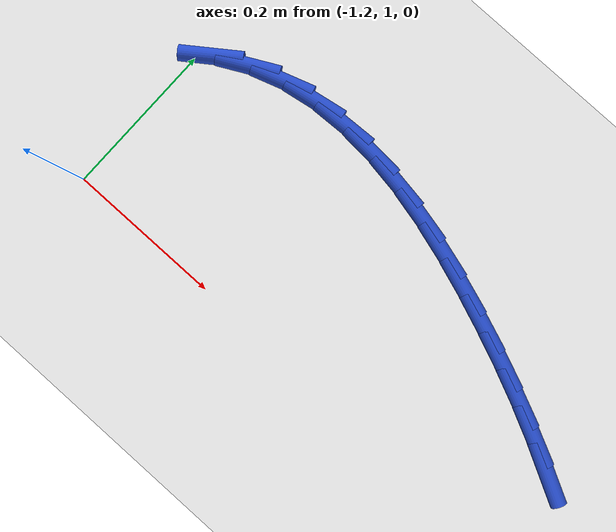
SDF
<sdf version="1.6">
 <world name="default">
  <model name="ground_plane">
   <static>1</static>
   <link name="link">
    <collision name="collision">
     <geometry><plane><normal>0 0 1</normal><size>100 100</size></plane></geometry>
     <surface><friction><ode><mu>100</mu><mu2>50</mu2></ode></friction></surface>
    </collision>
    <visual name="visual">
     <cast_shadows>0</cast_shadows>
     <geometry><plane><normal>0 0 1</normal><size>100 100</size></plane></geometry>
     <material>
      <script><uri>file://media/materials/scripts/gazebo.material</uri><name>Gazebo/WhiteGlow</name></script>
     </material>
    </visual>
   </link>
  </model>
  <model name="line">
   <link name="link_28">
    <pose>-0.5521324925458079 1.11052372530207 0.01 0 1.57 -0.4918160845121168</pose>
    <collision name="collision">
     <geometry><cylinder><radius>0.01</radius><length>0.08</length></cylinder></geometry>
    </collision>
    <visual name="visual">
     <material>
      <script><name>Gazebo/Blue</name><uri>file://media/materials/scripts/gazebo.material</uri></script>
     </material>
     <geometry><cylinder><radius>0.01</radius><length>0.08</length></cylinder></geometry>
    </visual>
   </link>
   <link name="link_29">
    <pose>-0.5935458943506481 1.1327098444851142 0.01 0 1.57 -0.45362842655288443</pose>
    <collision name="collision">
     <geometry><cylinder><radius>0.01</radius><length>0.08</length></cylinder></geometry>
    </collision>
    <visual name="visual">
     <material>
      <script><name>Gazebo/Blue</name><uri>file://media/materials/scripts/gazebo.material</uri></script>
     </material>
     <geometry><cylinder><radius>0.01</radius><length>0.08</length></cylinder></geometry>
    </visual>
   </link>
   <link name="link_30">
    <pose>-0.636310022555459 1.153558983488524 0.01 0 1.57 -0.41874259654983365</pose>
    <collision name="collision">
     <geometry><cylinder><radius>0.01</radius><length>0.08</length></cylinder></geometry>
    </collision>
    <visual name="visual">
     <material>
      <script><name>Gazebo/Blue</name><uri>file://media/materials/scripts/gazebo.material</uri></script>
     </material>
     <geometry><cylinder><radius>0.01</radius><length>0.08</length></cylinder></geometry>
    </visual>
   </link>
   <link name="link_31">
    <pose>-0.680326278826547 1.1731490886296692 0.01 0 1.57 -0.3869993596042835</pose>
    <collision name="collision">
     <geometry><cylinder><radius>0.01</radius><length>0.08</length></cylinder></geometry>
    </collision>
    <visual name="visual">
     <material>
      <script><name>Gazebo/Blue</name><uri>file://media/materials/scripts/gazebo.material</uri></script>
     </material>
     <geometry><cylinder><radius>0.01</radius><length>0.08</length></cylinder></geometry>
    </visual>
   </link>
   <link name="link_32">
    <pose>-0.7254960648302193 1.1915581062259184 0.01 0 1.57 -0.3579851384546086</pose>
    <collision name="collision">
     <geometry><cylinder><radius>0.01</radius><length>0.08</length></cylinder></geometry>
    </collision>
    <visual name="visual">
     <material>
      <script><name>Gazebo/Blue</name><uri>file://media/materials/scripts/gazebo.material</uri></script>
     </material>
     <geometry><cylinder><radius>0.01</radius><length>0.08</length></cylinder></geometry>
    </visual>
   </link>
   <link name="link_33">
    <pose>-0.7717162378962404 1.2088492701658993 0.01 0 1.57 -0.3251932840505033</pose>
    <collision name="collision">
     <geometry><cylinder><radius>0.01</radius><length>0.08</length></cylinder></geometry>
    </collision>
    <visual name="visual">
     <material>
      <script><name>Gazebo/Blue</name><uri>file://media/materials/scripts/gazebo.material</uri></script>
     </material>
     <geometry><cylinder><radius>0.01</radius><length>0.08</length></cylinder></geometry>
    </visual>
   </link>
   <link name="link_34">
    <pose>-0.8187686919033086 1.2247136166442205 0.01 0 1.57 -0.2812549926991139</pose>
    <collision name="collision">
     <geometry><cylinder><radius>0.01</radius><length>0.08</length></cylinder></geometry>
    </collision>
    <visual name="visual">
     <material>
      <script><name>Gazebo/Blue</name><uri>file://media/materials/scripts/gazebo.material</uri></script>
     </material>
     <geometry><cylinder><radius>0.01</radius><length>0.08</length></cylinder></geometry>
    </visual>
   </link>
   <link name="link_35">
    <pose>-0.8663142372746581 1.238450170459786 0.01 0 1.57 -0.2244659714510763</pose>
    <collision name="collision">
     <geometry><cylinder><radius>0.01</radius><length>0.08</length></cylinder></geometry>
    </collision>
    <visual name="visual">
     <material>
      <script><name>Gazebo/Blue</name><uri>file://media/materials/scripts/gazebo.material</uri></script>
     </material>
     <geometry><cylinder><radius>0.01</radius><length>0.08</length></cylinder></geometry>
    </visual>
   </link>
   <link name="link_36">
    <pose>-0.9140079150638308 1.2493392779004138 0.01 0 1.57 -0.15295369816399138</pose>
    <collision name="collision">
     <geometry><cylinder><radius>0.01</radius><length>0.08</length></cylinder></geometry>
    </collision>
    <visual name="visual">
     <material>
      <script><name>Gazebo/Blue</name><uri>file://media/materials/scripts/gazebo.material</uri></script>
     </material>
     <geometry><cylinder><radius>0.01</radius><length>0.08</length></cylinder></geometry>
    </visual>
   </link>
   <link name="link_37">
    <pose>-0.9615047663243695 1.2566612852539232 0.01 0 1.57 -0.06455185236638566</pose>
    <collision name="collision">
     <geometry><cylinder><radius>0.01</radius><length>0.08</length></cylinder></geometry>
    </collision>
    <visual name="visual">
     <material>
      <script><name>Gazebo/Blue</name><uri>file://media/materials/scripts/gazebo.material</uri></script>
     </material>
     <geometry><cylinder><radius>0.01</radius><length>0.08</length></cylinder></geometry>
    </visual>
   </link>
   <link name="link_38">
    <pose>-1.0084598321098155 1.259696538808132 0.01 0 1.57 0.04276153985517493</pose>
    <collision name="collision">
     <geometry><cylinder><radius>0.01</radius><length>0.08</length></cylinder></geometry>
    </collision>
    <visual name="visual">
     <material>
      <script><name>Gazebo/Blue</name><uri>file://media/materials/scripts/gazebo.material</uri></script>
     </material>
     <geometry><cylinder><radius>0.01</radius><length>0.08</length></cylinder></geometry>
    </visual>
   </link>
   <link name="link_39">
    <pose>-1.0545281534737119 1.257725384850859 0.01 0 1.57 0.1700152480711578</pose>
    <collision name="collision">
     <geometry><cylinder><radius>0.01</radius><length>0.08</length></cylinder></geometry>
    </collision>
    <visual name="visual">
     <material>
      <script><name>Gazebo/Blue</name><uri>file://media/materials/scripts/gazebo.material</uri></script>
     </material>
     <geometry><cylinder><radius>0.01</radius><length>0.08</length></cylinder></geometry>
    </visual>
   </link>
   <link name="link_40">
    <pose>-1.0993647714696009 1.2500281696699225 0.01 0 1.57 0.3159755409349067</pose>
    <collision name="collision">
     <geometry><cylinder><radius>0.01</radius><length>0.08</length></cylinder></geometry>
    </collision>
    <visual name="visual">
     <material>
      <script><name>Gazebo/Blue</name><uri>file://media/materials/scripts/gazebo.material</uri></script>
     </material>
     <geometry><cylinder><radius>0.01</radius><length>0.08</length></cylinder></geometry>
    </visual>
   </link>
   <link name="link_41">
    <pose>-1.1426247271510244 1.2358852395531414 0.01 0 1.57 0.47585016034493594</pose>
    <collision name="collision">
     <geometry><cylinder><radius>0.01</radius><length>0.08</length></cylinder></geometry>
    </collision>
    <visual name="visual">
     <material>
      <script><name>Gazebo/Blue</name><uri>file://media/materials/scripts/gazebo.material</uri></script>
     </material>
     <geometry><cylinder><radius>0.01</radius><length>0.08</length></cylinder></geometry>
    </visual>
   </link>
   <link name="link_42">
    <pose>-1.183964063220118 1.2145811123032588 0.01 0 1.57 0.6237546364896369</pose>
    <collision name="collision">
     <geometry><cylinder><radius>0.01</radius><length>0.08</length></cylinder></geometry>
    </collision>
    <visual name="visual">
     <material>
      <script><name>Gazebo/Blue</name><uri>file://media/materials/scripts/gazebo.material</uri></script>
     </material>
     <geometry><cylinder><radius>0.01</radius><length>0.08</length></cylinder></geometry>
    </visual>
   </link>
  </model>
 </world>
</sdf>
